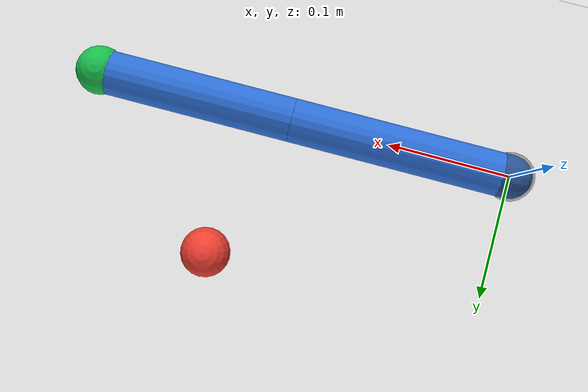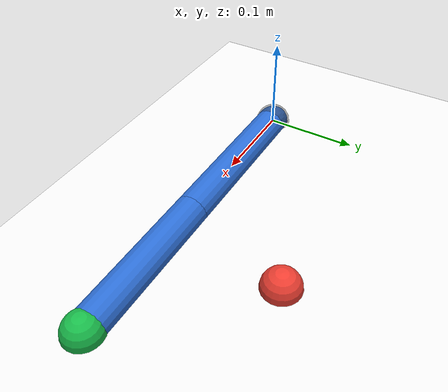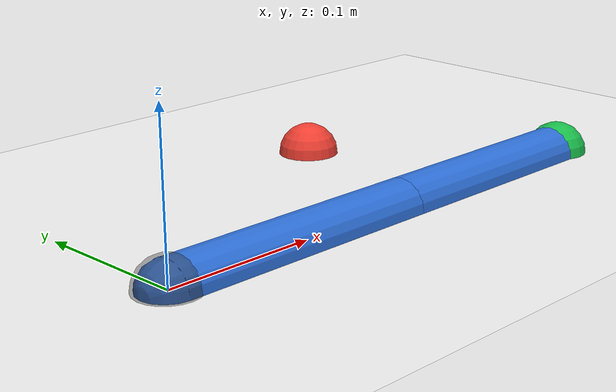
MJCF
<mujoco model="planar_reacher">
  <compiler angle="radian" coordinate="local"/>
  <option timestep="0.002" gravity="0 0 0" integrator="RK4"/>

  <default>
    <joint damping="1.8" armature="0.03" limited="true"/>
    <geom type="capsule" size="0.018" rgba="0.18 0.44 0.85 1"/>
    <site size="0.02"/>
    <motor ctrllimited="true" ctrlrange="-6 6"/>
  </default>

  <worldbody>
    <light directional="true" diffuse="0.8 0.8 0.8" pos="0 0 1"/>
    <geom name="floor" type="plane" size="1 1 0.1" rgba="0.95 0.95 0.95 1"/>

    <body name="base" pos="0 0 0">
      <site name="workspace_center" pos="0 0 0" rgba="0.2 0.2 0.2 0.4"/>

      <body name="link1" pos="0 0 0">
        <joint name="shoulder" type="hinge" axis="0 0 1" range="-3.14 3.14" frictionloss="0.02"/>
        <geom fromto="0 0 0 0.18 0 0"/>

        <body name="link2" pos="0.18 0 0">
          <joint name="elbow" type="hinge" axis="0 0 1" range="-3.14 3.14" frictionloss="0.02"/>
          <geom fromto="0 0 0 0.16 0 0"/>
          <site name="ee_site" pos="0.16 0 0" rgba="0.1 0.75 0.3 1"/>
        </body>
      </body>
    </body>

    <body name="target" mocap="true" pos="0.22 0.12 0">
      <geom name="target_geom" type="sphere" size="0.02" rgba="0.95 0.25 0.2 0.9" contype="0" conaffinity="0"/>
      <site name="target_site" pos="0 0 0" rgba="0.95 0.25 0.2 0.4"/>
    </body>
  </worldbody>

  <actuator>
    <motor name="shoulder_motor" joint="shoulder" gear="38"/>
    <motor name="elbow_motor" joint="elbow" gear="38"/>
  </actuator>

  <sensor>
    <jointpos name="shoulder_pos" joint="shoulder"/>
    <jointpos name="elbow_pos" joint="elbow"/>
    <jointvel name="shoulder_vel" joint="shoulder"/>
    <jointvel name="elbow_vel" joint="elbow"/>
    <framepos name="ee_pos" objtype="site" objname="ee_site"/>
  </sensor>
</mujoco>
